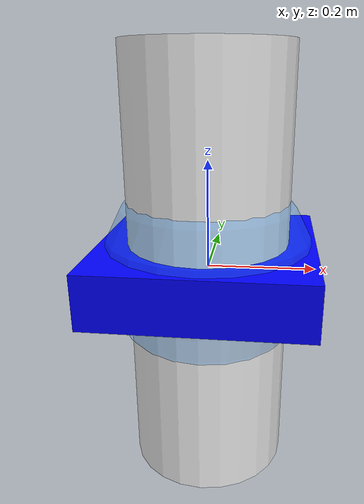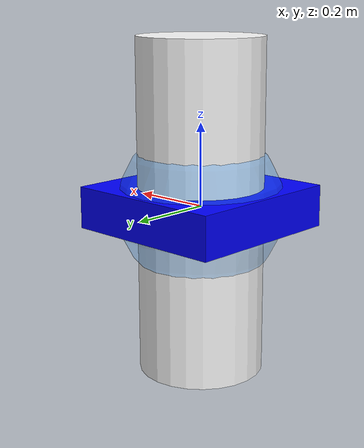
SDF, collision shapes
<?xml version="1.0" ?>
<sdf version="1.7">
  <model name="uuv_model">
    <static>false</static>

    <!-- Lower frame -->
    <link name="frame_lower">
      <visual name="frame_lower_visual">
        <pose>0 0 0 1.5708 0 0</pose>
        <geometry>
          <mesh>
            <uri>file:///home/qadruped/my_uuv_gz/models/uuv_model/meshes/frame_lower.stl</uri>
            <scale>0.001 0.001 0.001</scale>
          </mesh>
        </geometry>
        <material>
          <ambient>0 0 0.8 1</ambient>
          <diffuse>0 0 1 1</diffuse>
          <specular>0.5 0.5 0.5 1</specular>
          <emissive>0 0 0 1</emissive>
      </material>
      </visual>

      <collision name="frame_lower_col">
        <geometry>
          <box>
            <size>0.4 0.4 0.1</size> <!-- approximate dimensions -->
          </box>
        </geometry>
      </collision>

      <inertial>
        <mass>5.0</mass>
        <inertia>
          <ixx>0.1</ixx><iyy>0.1</iyy><izz>0.1</izz>
          <ixy>0</ixy><ixz>0</ixz><iyz>0</iyz>
        </inertia>
      </inertial>

    </link>

    <!-- Upper frame -->
    <link name="frame_upper">
      <visual name="frame_upper_visual">
        <pose>0 0 0 1.5708 0 0</pose>
        <geometry>
          <mesh>
            <uri>file:///home/qadruped/my_uuv_gz/models/uuv_model/meshes/frame_upper.stl</uri>
            <scale>0.001 0.001 0.001</scale>
          </mesh>
        </geometry>
        <material>
          <ambient>0 0 0.8 1</ambient>
          <diffuse>0 0 1 1</diffuse>
          <specular>0.5 0.5 0.5 1</specular>
          <emissive>0 0 0 1</emissive>
      </material>
      </visual>

      <collision name="frame_upper_col">
        <geometry>
          <box>
            <size>0.4 0.4 0.1</size> <!-- approximate dimensions -->
          </box>
        </geometry>
      </collision>

      <inertial>
        <mass>5.0</mass>
        <inertia>
          <ixx>0.1</ixx><iyy>0.1</iyy><izz>0.1</izz>
          <ixy>0</ixy><ixz>0</ixz><iyz>0</iyz>
        </inertia>
      </inertial>

    </link>

    <!-- Capsule glass -->
    <link name="capsule_glass">
      <visual name="capsule_glass_visual">
        <pose>0 0 0 1.5708 0 0</pose>
        <geometry>
          <mesh>
            <uri>file:///home/qadruped/my_uuv_gz/models/uuv_model/meshes/capsule_glass.stl</uri>
            <scale>0.001 0.001 0.001</scale>
          </mesh>
        </geometry>
        <material>
          <ambient>0.1 0.3 0.5 0.3</ambient>
          <diffuse>0.2 0.6 1 0.3</diffuse>
          <specular>0.5 0.5 0.5 0.3</specular>
          <emissive>0 0 0 0.3</emissive>
        </material>
      </visual>

      <collision name="capsule_glass_col">
        <geometry>
          <sphere>
            <radius>0.2</radius>
          </sphere>
        </geometry>
      </collision>

      <inertial>
        <mass>2.0</mass>
        <inertia>
          <ixx>0.05</ixx><iyy>0.05</iyy><izz>0.05</izz>
          <ixy>0</ixy><ixz>0</ixz><iyz>0</iyz>
        </inertia>
      </inertial>

    </link>

    <!-- Capsule back cover -->
    <link name="capsule_back_cover">
      <visual name="capsule_back_cover_visual">
        <pose>0 0 0 1.5708 0 0</pose>
        <geometry>
          <mesh>
            <uri>file:///home/qadruped/my_uuv_gz/models/uuv_model/meshes/capsule_back_cover.stl</uri>
            <scale>0.001 0.001 0.001</scale>
          </mesh>
        </geometry>
       <material>
          <ambient>0.2 0.2 0.2 1</ambient>
          <diffuse>0.3 0.3 0.3 1</diffuse>
          <specular>0.5 0.5 0.5 1</specular>
          <emissive>0 0 0 1</emissive>
        </material>
      </visual>

      <collision name="capsule_back_cover_col">
        <geometry>
          <box>
            <size>0.3 0.3 0.05</size>
          </box>
        </geometry>
      </collision>

      <inertial>
        <mass>3.0</mass>
        <inertia>
          <ixx>0.1</ixx><iyy>0.1</iyy><izz>0.05</izz>
          <ixy>0</ixy><ixz>0</ixz><iyz>0</iyz>
        </inertia>
      </inertial>

    </link>

    <!-- Capsule cylinder -->
    <link name="capsule_cylinder">
      <visual name="capsule_cylinder_visual">
        <pose>0 0 0 1.5708 0 0</pose>
        <geometry>
          <mesh>
            <uri>file:///home/qadruped/my_uuv_gz/models/uuv_model/meshes/capsule_cylinder.stl</uri>
            <scale>0.001 0.001 0.001</scale>
          </mesh>
        </geometry>
        <material>
          <ambient>0.8 0.8 0.8 1</ambient>
          <diffuse>1 1 1 1</diffuse>
          <specular>0.5 0.5 0.5 1</specular>
          <emissive>0 0 0 1</emissive>
        </material>
      </visual>

      <!-- Add collision for physics -->
      <collision name="capsule_cylinder_col">
        <geometry>
          <cylinder>
            <radius>0.15</radius>
            <length>0.8</length>
          </cylinder>
        </geometry>
      </collision>

      <!-- Add inertial for mass + inertia tensor -->
      <inertial>
        <mass>12.0</mass>
        <inertia>
          <ixx>0.5</ixx><iyy>0.5</iyy><izz>0.2</izz>
          <ixy>0</ixy><ixz>0</ixz><iyz>0</iyz>
        </inertia>
      </inertial>

    </link>

    <!-- Capsule front guard -->
    <link name="capsule_front_guard">
      <visual name="capsule_front_guard_visual">
        <pose>0 0 0 1.5708 0 0</pose>
        <geometry>
          <mesh>
            <uri>file:///home/qadruped/my_uuv_gz/models/uuv_model/meshes/capsule_front_guard.stl</uri>
            <scale>0.001 0.001 0.001</scale>
          </mesh>
        </geometry>
        <material>
          <ambient>0 0 0 1</ambient>
          <diffuse>0 0 0 1</diffuse>
          <specular>0.2 0.2 0.2 1</specular>
          <emissive>0 0 0 1</emissive>
        </material>
      </visual>

      <collision name="capsule_front_guard_col">
        <geometry>
          <box>
            <size>0.3 0.3 0.05</size>
          </box>
        </geometry>
      </collision>

      <inertial>
        <mass>2.0</mass>
        <inertia>
          <ixx>0.05</ixx><iyy>0.05</iyy><izz>0.02</izz>
          <ixy>0</ixy><ixz>0</ixz><iyz>0</iyz>
        </inertia>
      </inertial>

    </link>

    <!-- Capsule seal -->
    <link name="capsule_seal">
      <visual name="capsule_seal_visual">
        <pose>0 0 0 1.5708 0 0</pose>
        <geometry>
          <mesh>
            <uri>file:///home/qadruped/my_uuv_gz/models/uuv_model/meshes/capsule_seal.stl</uri>
            <scale>0.001 0.001 0.001</scale>
          </mesh>
        </geometry>
        <material>
          <ambient>0.8 0 0 1</ambient>
          <diffuse>1 0 0 1</diffuse>
          <specular>0.5 0.5 0.5 1</specular>
          <emissive>0 0 0 1</emissive>
        </material>
      </visual>

      <collision name="capsule_seal_col">
        <geometry>
          <cylinder>
            <radius>0.05</radius>
            <length>0.02</length>
          </cylinder>
        </geometry>
      </collision>

      <inertial>
        <mass>1.0</mass>
        <inertia>
          <ixx>0.01</ixx><iyy>0.01</iyy><izz>0.005</izz>
          <ixy>0</ixy><ixz>0</ixz><iyz>0</iyz>
        </inertia>
      </inertial>

    </link>

    <!-- Thrusters -->
    <link name="thruster2">
      <visual name="thruster2_visual">
        <pose>0 0 0 1.5708 0 0</pose>
        <geometry>
          <mesh>
            <uri>file:///home/qadruped/my_uuv_gz/models/uuv_model/meshes/thruster2.stl</uri>
            <scale>0.001 0.001 0.001</scale>
          </mesh>
        </geometry>
        <material>
          <ambient>0.1 0.1 0.1 1</ambient>
          <diffuse>0.2 0.2 0.2 1</diffuse>
          <specular>0.5 0.5 0.5 1</specular>
          <emissive>0 0 0 1</emissive>
        </material>
      </visual>

      <collision name="thruster2_col">
        <geometry>
          <cylinder>
            <radius>0.05</radius>
            <length>0.1</length>
          </cylinder>
        </geometry>
      </collision>

      <inertial>
        <mass>0.5</mass>
        <inertia>
          <ixx>0.01</ixx><iyy>0.01</iyy><izz>0.005</izz>
          <ixy>0</ixy><ixz>0</ixz><iyz>0</iyz>
        </inertia>
      </inertial>

    </link>

    <link name="thruster3">
      <visual name="thruster3_visual">
        <pose>0 0 0 1.5708 0 0</pose>
        <geometry>
          <mesh>
            <uri>file:///home/qadruped/my_uuv_gz/models/uuv_model/meshes/thruster3.stl</uri>
            <scale>0.001 0.001 0.001</scale>
          </mesh>
        </geometry>
        <material>
          <ambient>0.1 0.1 0.1 1</ambient>
          <diffuse>0.2 0.2 0.2 1</diffuse>
          <specular>0.5 0.5 0.5 1</specular>
          <emissive>0 0 0 1</emissive>
        </material>
      </visual>

      <collision name="thruster3_col">
        <geometry>
          <cylinder>
            <radius>0.05</radius>
            <length>0.1</length>
          </cylinder>
        </geometry>
      </collision>

      <inertial>
        <mass>0.5</mass>
        <inertia>
          <ixx>0.01</ixx><iyy>0.01</iyy><izz>0.005</izz>
          <ixy>0</ixy><ixz>0</ixz><iyz>0</iyz>
        </inertia>
      </inertial>

    </link>

    <link name="thruster5">
      <visual name="thruster5_visual">
        <pose>0 0 0 1.5708 0 0</pose>
        <geometry>
          <mesh>
            <uri>file:///home/qadruped/my_uuv_gz/models/uuv_model/meshes/thruster5.stl</uri>
            <scale>0.001 0.001 0.001</scale>
          </mesh>
        </geometry>
        <material>
          <ambient>0.1 0.1 0.1 1</ambient>
          <diffuse>0.2 0.2 0.2 1</diffuse>
          <specular>0.5 0.5 0.5 1</specular>
          <emissive>0 0 0 1</emissive>
        </material>
      </visual>

      <collision name="thruster5_col">
        <geometry>
          <cylinder>
            <radius>0.05</radius>
            <length>0.1</length>
          </cylinder>
        </geometry>
      </collision>

      <inertial>
        <mass>0.5</mass>
        <inertia>
          <ixx>0.01</ixx><iyy>0.01</iyy><izz>0.005</izz>
          <ixy>0</ixy><ixz>0</ixz><iyz>0</iyz>
        </inertia>
      </inertial>

    </link>

    <link name="thruster6">
      <visual name="thruster6_visual">
        <pose>0 0 0 1.5708 0 0</pose>
        <geometry>
          <mesh>
            <uri>file:///home/qadruped/my_uuv_gz/models/uuv_model/meshes/thruster6.stl</uri>
            <scale>0.001 0.001 0.001</scale>
          </mesh>
        </geometry>
        <material>
          <ambient>0.1 0.1 0.1 1</ambient>
          <diffuse>0.2 0.2 0.2 1</diffuse>
          <specular>0.5 0.5 0.5 1</specular>
          <emissive>0 0 0 1</emissive>
        </material>
      </visual>

      <collision name="thruster6_col">
        <geometry>
          <cylinder>
            <radius>0.05</radius>
            <length>0.1</length>
          </cylinder>
        </geometry>
      </collision>

      <inertial>
        <mass>0.5</mass>
        <inertia>
          <ixx>0.01</ixx><iyy>0.01</iyy><izz>0.005</izz>
          <ixy>0</ixy><ixz>0</ixz><iyz>0</iyz>
        </inertia>
      </inertial>

    </link>

    <link name="thruster7">
      <visual name="thruster7_visual">
        <pose>0 0 0 1.5708 0 0</pose>
        <geometry>
          <mesh>
            <uri>file:///home/qadruped/my_uuv_gz/models/uuv_model/meshes/thruster7.stl</uri>
            <scale>0.001 0.001 0.001</scale>
          </mesh>
        </geometry>
        <material>
          <ambient>0.1 0.1 0.1 1</ambient>
          <diffuse>0.2 0.2 0.2 1</diffuse>
          <specular>0.5 0.5 0.5 1</specular>
          <emissive>0 0 0 1</emissive>
        </material>
      </visual>

      <collision name="thruster7_col">
        <geometry>
          <cylinder>
            <radius>0.05</radius>
            <length>0.1</length>
          </cylinder>
        </geometry>
      </collision>

      <inertial>
        <mass>0.5</mass>
        <inertia>
          <ixx>0.01</ixx><iyy>0.01</iyy><izz>0.005</izz>
          <ixy>0</ixy><ixz>0</ixz><iyz>0</iyz>
        </inertia>
      </inertial>

    </link>

    <link name="thruster8">
      <visual name="thruster8_visual">
        <pose>0 0 0 1.5708 0 0</pose>
        <geometry>
          <mesh>
            <uri>file:///home/qadruped/my_uuv_gz/models/uuv_model/meshes/thruster8.stl</uri>
            <scale>0.001 0.001 0.001</scale>
          </mesh>
        </geometry>
        <material>
          <ambient>0.1 0.1 0.1 1</ambient>
          <diffuse>0.2 0.2 0.2 1</diffuse>
          <specular>0.5 0.5 0.5 1</specular>
          <emissive>0 0 0 1</emissive>
        </material>
      </visual>

      <collision name="thruster8_col">
        <geometry>
          <cylinder>
            <radius>0.05</radius>
            <length>0.1</length>
          </cylinder>
        </geometry>
      </collision>

      <inertial>
        <mass>0.5</mass>
        <inertia>
          <ixx>0.01</ixx><iyy>0.01</iyy><izz>0.005</izz>
          <ixy>0</ixy><ixz>0</ixz><iyz>0</iyz>
        </inertia>
      </inertial>

    </link>

    <plugin name="gz::sim::systems::Hydrodynamics" filename="gz-sim-hydrodynamics-system">
      <link_name>capsule_cylinder</link_name>
      <fluid_density>1000</fluid_density>

      <linear_drag>
        <x>15.0</x>
        <y>15.0</y>
        <z>20.0</z>
      </linear_drag>

      <angular_drag>
        <x>2.0</x>
        <y>2.0</y>
        <z>1.0</z>
      </angular_drag>

      <added_mass>
        <xx>5.0</xx>
        <yy>5.0</yy>
        <zz>10.0</zz>
      </added_mass>
    </plugin>

  </model>
</sdf>
